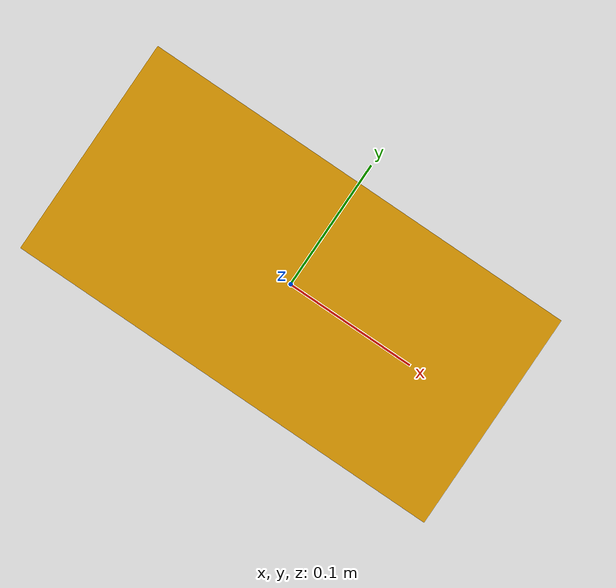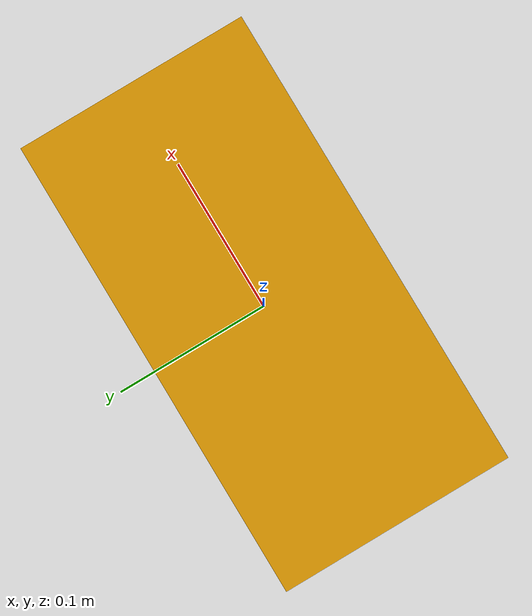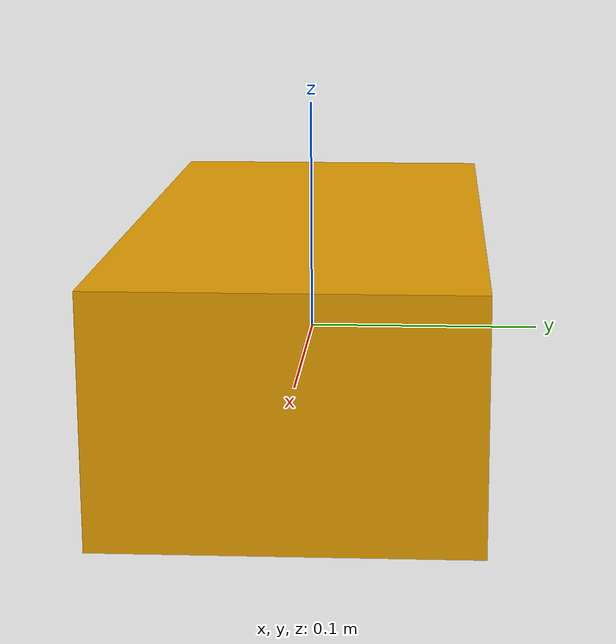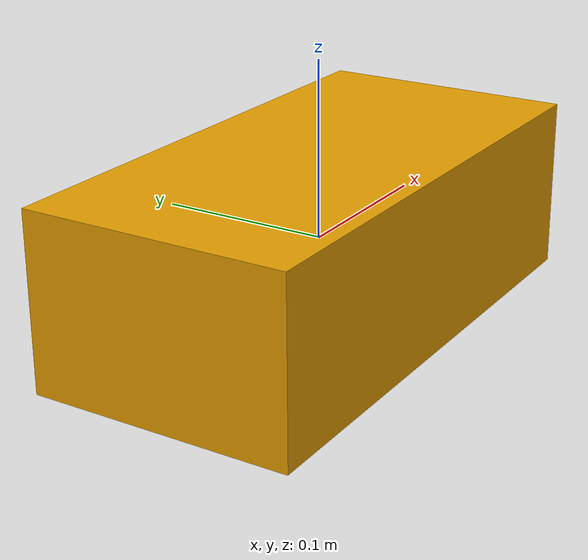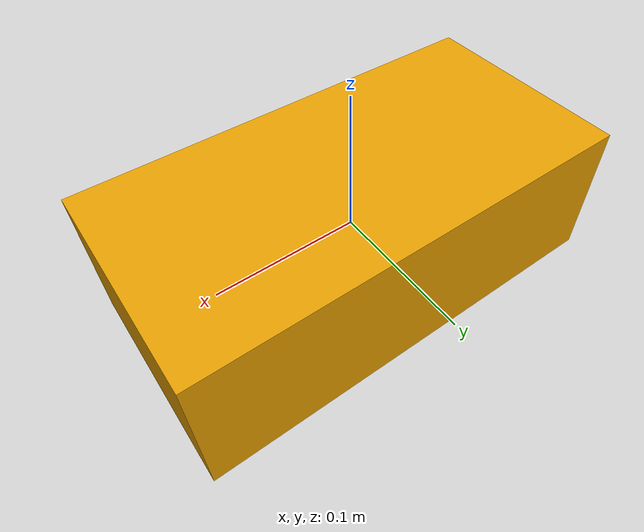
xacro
<?xml version="1.0"?>
<robot xmlns:xacro="http://www.ros.org/wiki/xacro" name="opendoge_apx">
  <!-- Base -->
  <link name="base_link">
    <visual>
      <geometry>
        <box size="0.3 0.15 0.1"/>
      </geometry>
    </visual>
  </link>

  <!-- IMU -->
  <link name="imu_link"/>
  <joint name="imu_joint" type="fixed">
    <parent link="base_link"/>
    <child link="imu_link"/>
    <origin xyz="0 0 0.05" rpy="0 0 0"/>
  </joint>

  <!-- Simple 12-DOF leg layout: FL/FR/RL/RR -->
  <xacro:macro name="leg" params="prefix x y z yaw pitch roll">
    <link name="${prefix}_hip_link"/>
    <joint name="${prefix}_hip_joint" type="revolute">
      <parent link="base_link"/>
      <child link="${prefix}_hip_link"/>
      <origin xyz="${x} ${y} ${z}" rpy="${roll} ${pitch} ${yaw}"/>
      <axis xyz="0 1 0"/>
      <limit lower="-1.57" upper="1.57" effort="50" velocity="10"/>
    </joint>

    <link name="${prefix}_thigh_link"/>
    <joint name="${prefix}_thigh_joint" type="revolute">
      <parent link="${prefix}_hip_link"/>
      <child link="${prefix}_thigh_link"/>
      <origin xyz="0 0 -0.05" rpy="0 0 0"/>
      <axis xyz="1 0 0"/>
      <limit lower="-2.0" upper="2.0" effort="50" velocity="10"/>
    </joint>

    <link name="${prefix}_calf_link"/>
    <joint name="${prefix}_calf_joint" type="revolute">
      <parent link="${prefix}_thigh_link"/>
      <child link="${prefix}_calf_link"/>
      <origin xyz="0 0 -0.2" rpy="0 0 0"/>
      <axis xyz="1 0 0"/>
      <limit lower="-2.5" upper="0.0" effort="50" velocity="10"/>
    </joint>
  </xacro:macro>

  <!-- Front Left -->
  <xacro:leg prefix="FL" x="0.15" y="0.075" z="0.0" roll="0" pitch="0" yaw="0"/>
  <!-- Front Right -->
  <xacro:leg prefix="FR" x="0.15" y="-0.075" z="0.0" roll="0" pitch="0" yaw="0"/>
  <!-- Rear Left -->
  <xacro:leg prefix="RL" x="-0.15" y="0.075" z="0.0" roll="0" pitch="0" yaw="0"/>
  <!-- Rear Right -->
  <xacro:leg prefix="RR" x="-0.15" y="-0.075" z="0.0" roll="0" pitch="0" yaw="0"/>

  <!-- ros2_control placeholder: actual hardware mapping defined in YAML -->
  <ros2_control name="OpendogeHardware" type="system">
    <hardware>
      <plugin>motor_control_interface/MotorHardware</plugin>
      <param name="can_interfaces">can0,can1,can2,can3</param>
      <param name="master_id">253</param>
      <param name="bitrate">1000000</param>
      <param name="command_timeout_ms">20</param>
      <param name="state_timeout_ms">20</param>
      <param name="fault_reaction">damping</param>
    </hardware>

    <!-- Joint list must match controllers.yaml & policy base.yaml -->
    <xacro:macro name="register_joint" params="joint_name motor_id can_interface">
      <joint name="${joint_name}">
        <param name="motor_id">${motor_id}</param>
        <param name="can_interface">${can_interface}</param>
        <command_interface name="position"/>
        <command_interface name="velocity"/>
        <command_interface name="effort"/>
        <command_interface name="kp"/>
        <command_interface name="kd"/>
        <state_interface name="position"/>
        <state_interface name="velocity"/>
        <state_interface name="effort"/>
        <state_interface name="temperature"/>
        <state_interface name="fault"/>
      </joint>
    </xacro:macro>

    <xacro:register_joint joint_name="FL_hip_joint" motor_id="1" can_interface="can0"/>
    <xacro:register_joint joint_name="FL_thigh_joint" motor_id="2" can_interface="can0"/>
    <xacro:register_joint joint_name="FL_calf_joint" motor_id="3" can_interface="can0"/>
    <xacro:register_joint joint_name="FR_hip_joint" motor_id="4" can_interface="can1"/>
    <xacro:register_joint joint_name="FR_thigh_joint" motor_id="5" can_interface="can1"/>
    <xacro:register_joint joint_name="FR_calf_joint" motor_id="6" can_interface="can1"/>
    <xacro:register_joint joint_name="RL_hip_joint" motor_id="7" can_interface="can2"/>
    <xacro:register_joint joint_name="RL_thigh_joint" motor_id="8" can_interface="can2"/>
    <xacro:register_joint joint_name="RL_calf_joint" motor_id="9" can_interface="can2"/>
    <xacro:register_joint joint_name="RR_hip_joint" motor_id="10" can_interface="can3"/>
    <xacro:register_joint joint_name="RR_thigh_joint" motor_id="11" can_interface="can3"/>
    <xacro:register_joint joint_name="RR_calf_joint" motor_id="12" can_interface="can3"/>
  </ros2_control>
</robot>
